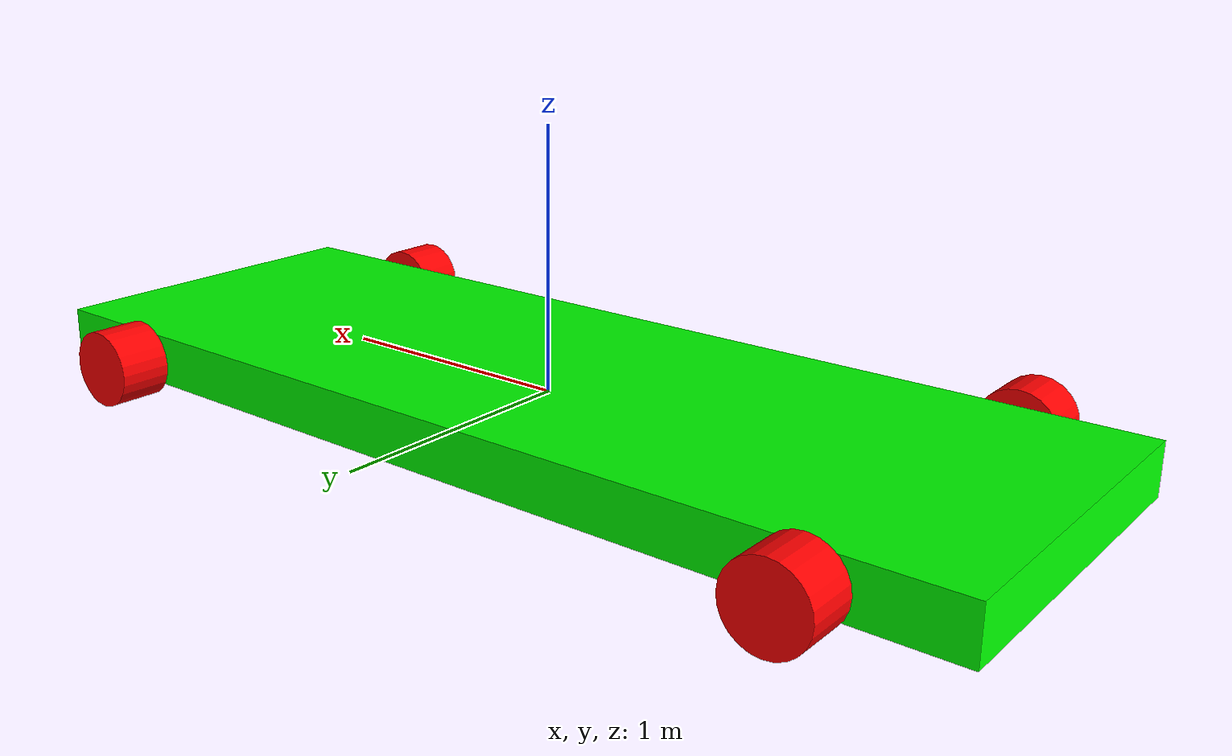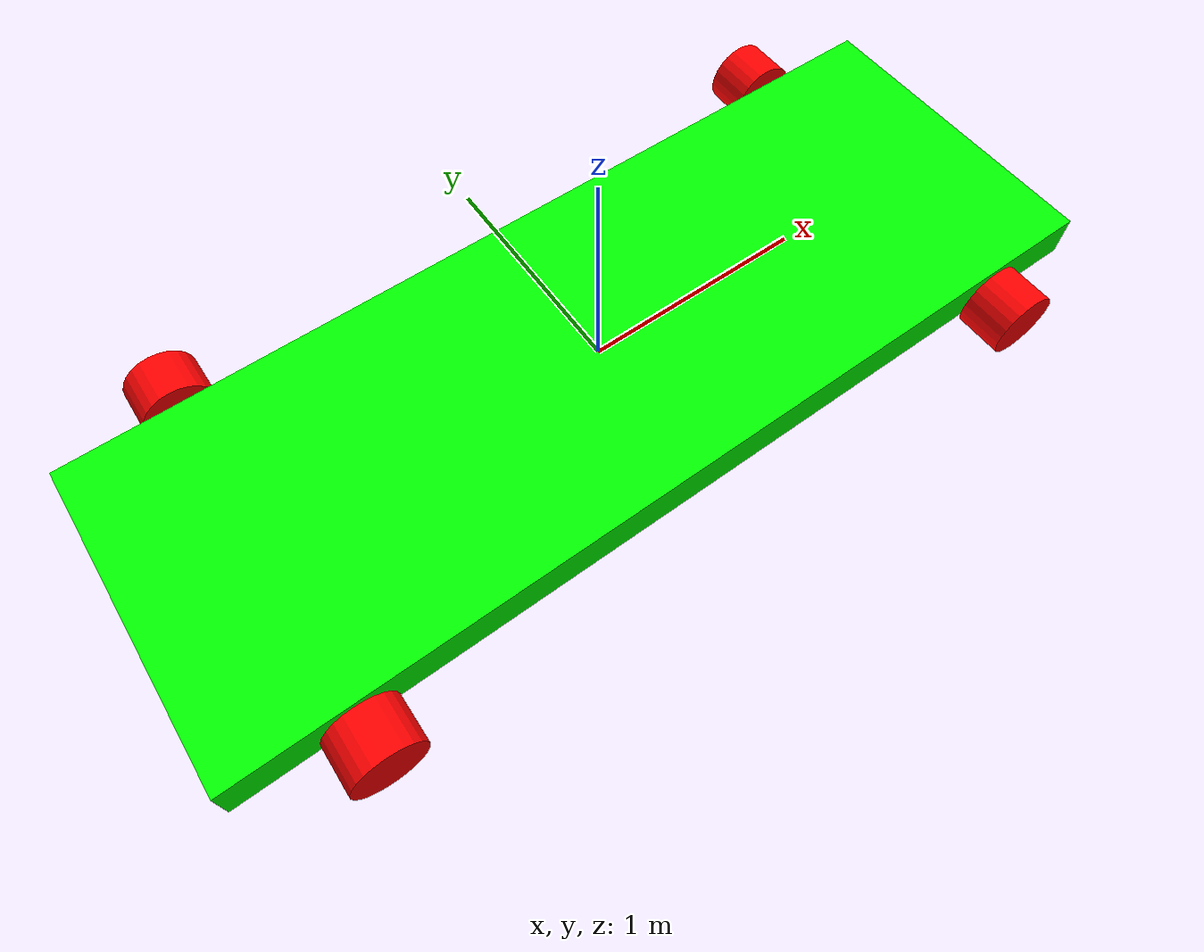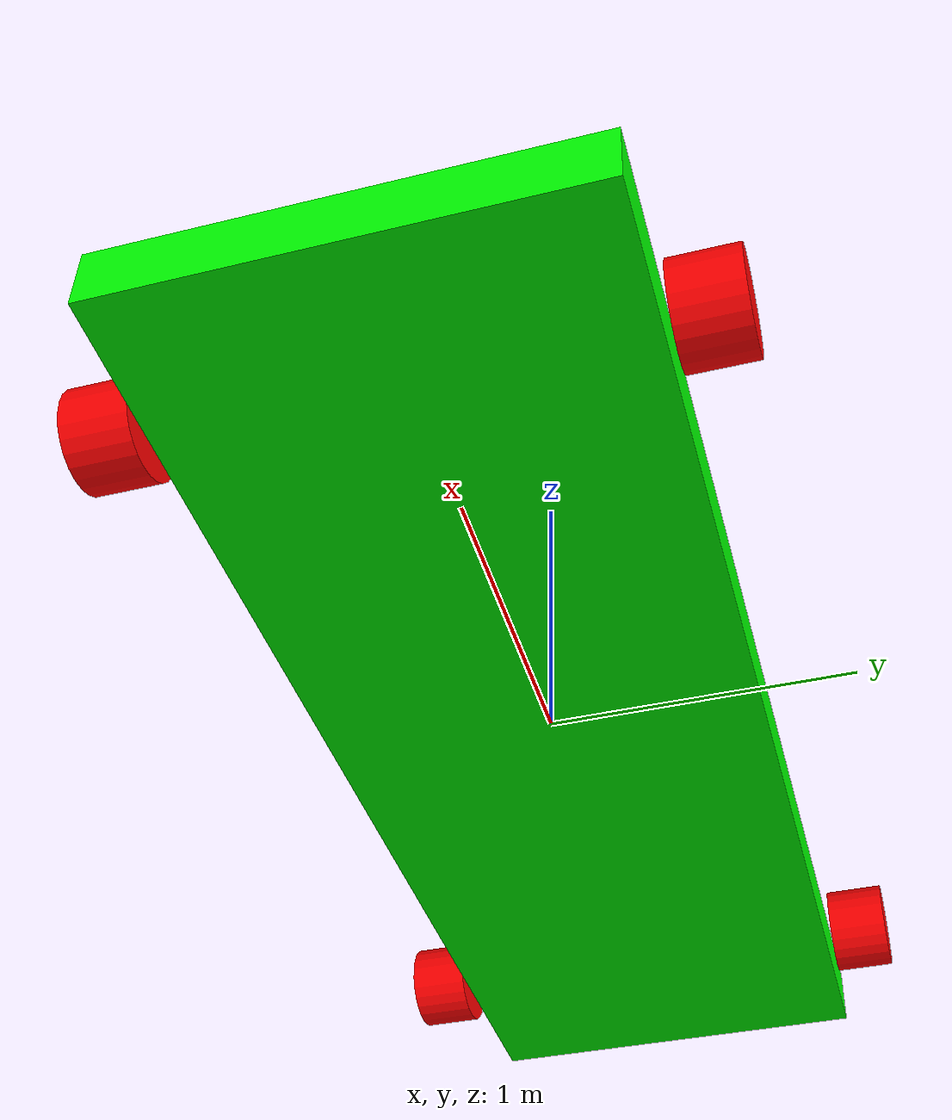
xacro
<?xml version="1.0"?>
<robot xmlns:xacro="http://www.ros.org/wiki/xacro" name="traffic_bot3">
    <xacro:include filename="$(find generate_labels)/urdf/inertial_macros.xacro"/>

    <xacro:property name="wheel_radius" value="0.15" />
    <xacro:property name="wheel_length" value="0.20" />
    <xacro:property name="wheel_color_name" value="red" />
    <xacro:property name="wheel_color_rgb" value="1 0 0 1" />
    <xacro:arg name="robot_namespace" default=""/>
    <xacro:arg name="bit1" default="0xffff"/>

    <xacro:macro name="box_link" params="name size color color_rgb mass mass_x mass_y mass_z" >
        <link name="$(arg robot_namespace)/${name}">
            <visual>
                <geometry>
                    <box size="${size}"/>
                </geometry>
                <material name="${color}">
                    <color rgba="${color_rgb}"/>
                </material>
            </visual>
            <collision>
                <origin xyz="0.0 0.0 0.0" rpy="0 0 0"/>
                <geometry>
                    <box size="${size}"/>
                </geometry>
            </collision>
            <xacro:inertial_box mass="${mass}" x="${mass_x}" y="${mass_y}" z="${mass_z}">
                <origin xyz="${mass_x} ${mass_y} ${mass_z}" rpy="0 0 0"/>
            </xacro:inertial_box>
        </link>
    </xacro:macro>

    <xacro:macro name="wheel" params="name mass">
        <link name="$(arg robot_namespace)/${name}">
            <visual>
                <geometry>
                    <cylinder radius="${wheel_radius}" length="${wheel_length}" />
                </geometry>
                <material name="${wheel_color_name}">
                    <color rgba="${wheel_color_rgb}"/>
                </material>
            </visual>
            <collision>
                <geometry>
                    <cylinder length="${wheel_length}" radius="${wheel_radius}" />
                </geometry>
                <material name="blue"/>
            </collision>
            <xacro:inertial_cylinder mass="${mass}" length="${wheel_length}" radius="${wheel_radius}">
                <origin xyz="0 0 0" rpy="0 0 0"/>
            </xacro:inertial_cylinder>
        </link>
    </xacro:macro>

    <xacro:macro name="wheel_joint" params="name parent child xyz ">
        <joint name="$(arg robot_namespace)/${name}" type="continuous">
            <parent link="$(arg robot_namespace)/${parent}" />
            <child link="$(arg robot_namespace)/${child}" />
            <origin xyz="${xyz}" rpy="${-pi/2} 0 0"/>
            <axis rpy="0 0 0" xyz="0 0 1"/>
        </joint>
    </xacro:macro>

    <!-- Robot Description -->
     <link name="$(arg robot_namespace)/base_link">
    </link>

    <xacro:box_link name="base_footprint" size="4.0 1.4 0.2" color="green" color_rgb="0 1 0 1"
        mass="0.5" mass_x="2.0" mass_y="0.7" mass_z="0.05"/>

    <joint name="$(arg robot_namespace)/base_joint" type="fixed">
        <parent link="$(arg robot_namespace)/base_link"/>
        <child link="$(arg robot_namespace)/base_footprint"/>
        <origin xyz="0 0 0"/>
    </joint>

    <xacro:wheel name="right_wheel_frontside" mass="0.1" />
    <xacro:wheel_joint name="base_link_right_wheel_frontside" parent="base_link"
        child="right_wheel_frontside" xyz="1.5 -0.825 -0.0" />

    <xacro:wheel name="right_wheel_backside" mass="0.1" />
    <xacro:wheel_joint name="base_link_right_wheel_backside" parent="base_link"
        child="right_wheel_backside" xyz="-1.5 -0.825 -0.0" />

    <xacro:wheel name="left_wheel_frontside" mass="0.1" />
    <xacro:wheel_joint name="base_link_left_wheel_frontside" parent="base_link"
        child="left_wheel_frontside" xyz="1.5 0.825 -0.0" />

    <xacro:wheel name="left_wheel_backside" mass="0.1" />
    <xacro:wheel_joint name="base_link_left_wheel_backside" parent="base_link"
        child="left_wheel_backside" xyz="-1.5 0.825 -0.0" />

    <!-- Gazebo Colors -->
    <gazebo reference="$(arg robot_namespace)/base_footprint">
        <material>Gazebo/Green</material>
        <collision>
            <surface>
                <contact>
                    <collide_bitmask>$(arg bit1)</collide_bitmask>
                </contact>
            </surface>
        </collision>
    </gazebo>
    <gazebo reference="$(arg robot_namespace)/right_wheel_frontside">
        <material>Gazebo/Red</material>
        <collision>
            <surface>
                <friction>
                    <ode>
                    <mu>1.0</mu>
                    <mu2>2.0</mu2>
                    </ode>
                </friction>
                <contact>
                    <collide_bitmask>$(arg bit1)</collide_bitmask>
                </contact>
            </surface>
        </collision>
    </gazebo>

    <gazebo reference="$(arg robot_namespace)/right_wheel_backside">
        <material>Gazebo/Red</material>
        <collision>
            <surface>
                <friction>
                    <ode>
                    <mu>1.0</mu>
                    <mu2>2.0</mu2>
                    </ode>
                </friction>
                <contact>
                    <collide_bitmask>$(arg bit1)</collide_bitmask>
                </contact>
            </surface>
        </collision>
    </gazebo>
    <gazebo reference="$(arg robot_namespace)/left_wheel_frontside">
        <material>Gazebo/Red</material>
        <collision>
            <surface>
                <friction>
                    <ode>
                    <mu>1.0</mu>
                    <mu2>2.0</mu2>
                    </ode>
                </friction>
                <contact>
                    <collide_bitmask>$(arg bit1)</collide_bitmask>
                </contact>
            </surface>
        </collision>
    </gazebo>
    <gazebo reference="$(arg robot_namespace)/left_wheel_backside">
        <material>Gazebo/Red</material>
        <collision>
            <surface>
                <friction>
                    <ode>
                    <mu>1.0</mu>
                    <mu2>2.0</mu2>
                    </ode>
                </friction>
                <contact>
                    <collide_bitmask>$(arg bit1)</collide_bitmask>
                </contact>
            </surface>
        </collision>
    </gazebo>

    <gazebo>
        <plugin name="wheel_drive_controller" filename="libgazebo_ros_diff_drive.so">
            <!-- wheels -->
            <num_wheel_pairs>2</num_wheel_pairs>
            <left_joint>$(arg robot_namespace)/base_link_left_wheel_frontside</left_joint>
            <left_joint>$(arg robot_namespace)/base_link_left_wheel_backside</left_joint>
            <right_joint>$(arg robot_namespace)/base_link_right_wheel_frontside</right_joint>
            <right_joint>$(arg robot_namespace)/base_link_right_wheel_backside</right_joint>

            <!-- kinematics -->
            <wheel_separation>1.65</wheel_separation>
            <wheel_diameter>0.30</wheel_diameter>

            <!-- Limits -->
            <max_wheel_torque>20.0</max_wheel_torque>

            <max_wheel_acceleration>40.0</max_wheel_acceleration>
            <odometry_source>1</odometry_source>

            <!-- Output -->
            <odometry_frame>$(arg robot_namespace)/odom</odometry_frame>
            <robot_base_frame>$(arg robot_namespace)/base_link</robot_base_frame>

            <!-- topic & re remappings -->
            <ros>
                <remapping>/cmd_vel:=$(arg robot_namespace)/cmd_vel</remapping>
                <remapping>/odom:=$(arg robot_namespace)/odom</remapping>
                <namespace>$(arg robot_namespace)</namespace>
            </ros>

            <publish_odom>true</publish_odom>
            <publish_odom_tf>true</publish_odom_tf>
            <publish_wheel_tf>true</publish_wheel_tf>

            <update_rate>30.0</update_rate>
        </plugin>
    </gazebo>

</robot>

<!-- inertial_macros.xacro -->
<robot xmlns:xacro="http://www.ros.org/wiki/xacro">

    <xacro:macro name="inertial_sphere" params="mass radius *origin">
        <inertial>
            <xacro:insert_block name="origin"/>
            <mass value="${mass}" />
            <inertia ixx="${(2/5) * mass * (radius*radius)}" ixy="0.0" ixz="0.0"
                    iyy="${(2/5) * mass * (radius*radius)}" iyz="0.0"
                    izz="${(2/5) * mass * (radius*radius)}" />
        </inertial>
    </xacro:macro>

    <xacro:macro name="inertial_box" params="mass x y z *origin">
        <inertial>
            <xacro:insert_block name="origin"/>
            <mass value="${mass}" />
            <inertia ixx="${(1/12) * mass * (y*y+z*z)}" ixy="0.0" ixz="0.0"
                    iyy="${(1/12) * mass * (x*x+z*z)}" iyz="0.0"
                    izz="${(1/12) * mass * (x*x+y*y)}" />
        </inertial>
    </xacro:macro>

    <xacro:macro name="inertial_cylinder" params="mass length radius *origin">
        <inertial>
            <xacro:insert_block name="origin"/>
            <mass value="${mass}" />
            <inertia ixx="${(1/12) * mass * (3*radius*radius + length*length)}" ixy="0.0" ixz="0.0"
                    iyy="${(1/12) * mass * (3*radius*radius + length*length)}" iyz="0.0"
                    izz="${(1/2) * mass * (radius*radius)}" />
        </inertial>
    </xacro:macro>

</robot>
